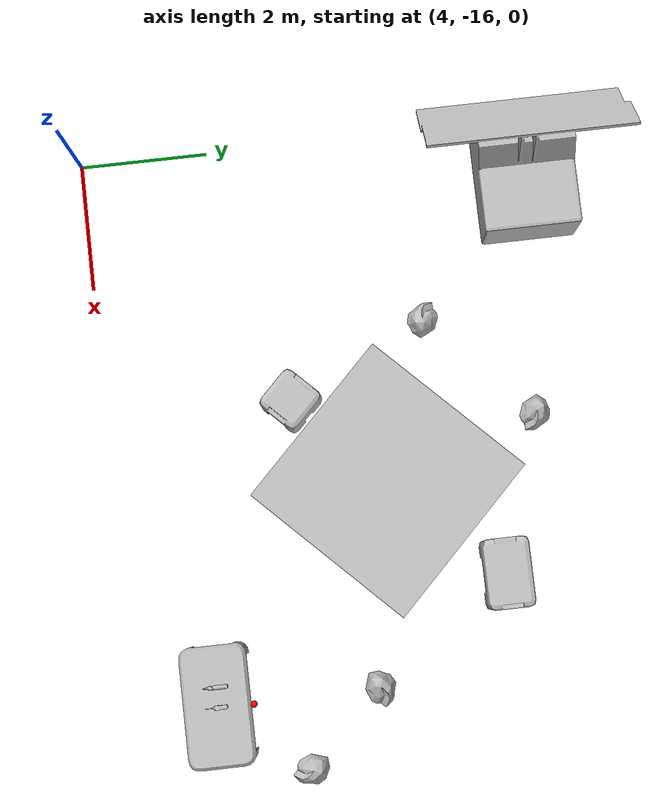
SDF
<sdf version="1.6">
 <world name="SRC_finals">
  <include>
   <pose>5.417046200298301
        -9.02441469592094
        0
        0
        0
        1.5707963267948966</pose>
   <uri>model://solar_array</uri>
  </include>
  <include>
   <name>mars_rock_1_10</name>
   <pose>7.074347135365186
      -10.912927202842724
      0
      0
      0
      2.356194490192345</pose>
   <uri>model://mars_rock_1</uri>
  </include>
  <include>
   <name>mars_rock_1_11</name>
   <pose>8.717663294842723
      -9.269611043365188
      0
      0
      0
      -0.7853981633974484</pose>
   <uri>model://mars_rock_1</uri>
  </include>
  <include>
   <name>walkway_11</name>
   <pose>9.512451316896403
      -11.707715224896404
      -0.052151
      0
      0
      2.356194490192345</pose>
   <uri>model://walkway_finish_opposite</uri>
  </include>
  <include>
   <name>mars_crate_12</name>
   <pose>8.151977869893486
      -13.068188671899321
      0
      0
      0
      2.356194490192345</pose>
   <uri>model://mars_crate</uri>
  </include>
  <include>
   <name>mars_crate_long_13</name>
   <pose>11.15576747637394
      -10.064399065418867
      0
      0
      0
      -2.7755575615628914e-16</pose>
   <uri>model://mars_crate_long</uri>
  </include>
  <include>
   <name>mars_rock_1_14</name>
   <pose>13.815302843645137
      -13.323640831044075
      0
      0
      0
      -1.5707963267948968</pose>
   <uri>model://mars_rock_1</uri>
  </include>
  <include>
   <name>mars_rock_1_15</name>
   <pose>12.653302843645136
      -12.161640831044075
      0
      0
      0
      -1.8369701987210297e-16</pose>
   <uri>model://mars_rock_1</uri>
  </include>
  <include>
   <pose>12.653302843645136
        -14.585640831044076
        0
        0
        0
        3.141592653589793</pose>
   <uri>model://space_table</uri>
  </include>
  <model name="air_leak_detector">
   <pose>12.653302843645136
    -14.585640831044076
    0.79448
    0
    0
    4.71238898038469</pose>
   <link name="base">
    <inertial>
     <pose>0
      -0.00063
      0
      0
      0
      0</pose>
     <inertia>
      <ixx>0.0006035883333333333</ixx>
      <iyy>0.003206729933333333</iyy>
      <izz>0.003333989666666666</izz>
     </inertia>
     <mass>1.0</mass>
    </inertial>
    <collision name="collision">
     <pose>0 0 -0.026760000000000003 0 0 -1.5707963267948966</pose>
     <geometry>
      <mesh><scale>0.02 0.02 0.02</scale><uri>model://air_leak_detector/meshes/air_leak_detector.obj</uri></mesh>
     </geometry>
     <surface>
      <contact><ode><kp>1e5</kp><kd>1</kd><max_vel>0.1</max_vel><min_depth>0.0015</min_depth></ode></contact>
     </surface>
    </collision>
    <visual name="visual">
     <pose>0 0 -0.026760000000000003 0 0 -1.5707963267948966</pose>
     <geometry>
      <mesh><scale>0.02 0.02 0.02</scale><uri>model://air_leak_detector/meshes/air_leak_detector.obj</uri></mesh>
     </geometry>
    </visual>
    <sensor name="logical_camera" type="logical_camera">
     <logical_camera>
      <near>0.1</near>
      <far>0.5</far>
      <horizontal_fov>0.5235987755982988</horizontal_fov>
      <aspect_ratio>1</aspect_ratio>
     </logical_camera>
     <visualize>true</visualize>
     <always_on>true</always_on>
     <update_rate>10</update_rate>
    </sensor>
   </link>
  </model>
  <include>
   <pose>12.353302843645135
        -14.585640831044076
        0.7999999999999999
        0
        0
        3.141592653589793</pose>
   <uri>model://leak_patch_tool</uri>
  </include>
  <model name="leak">
   <static>true</static>
   <pose>12.653302843645136 -14.085640831044076 0.87 0 0 0</pose>
   <link name="base">
    <visual name="visual">
     <geometry><sphere><radius>0.05</radius></sphere></geometry>
     <material>
      <ambient>1 0 0 1</ambient>
      <emissive>1 0 0 1</emissive>
      <diffuse>1 0 0 1</diffuse>
      <specular>1 1 1 1</specular>
     </material>
     <meta><layer>1</layer></meta>
    </visual>
    <collision name="collision"><geometry><sphere><radius>0.05</radius></sphere></geometry></collision>
   </link>
  </model>
 </world>
</sdf>
